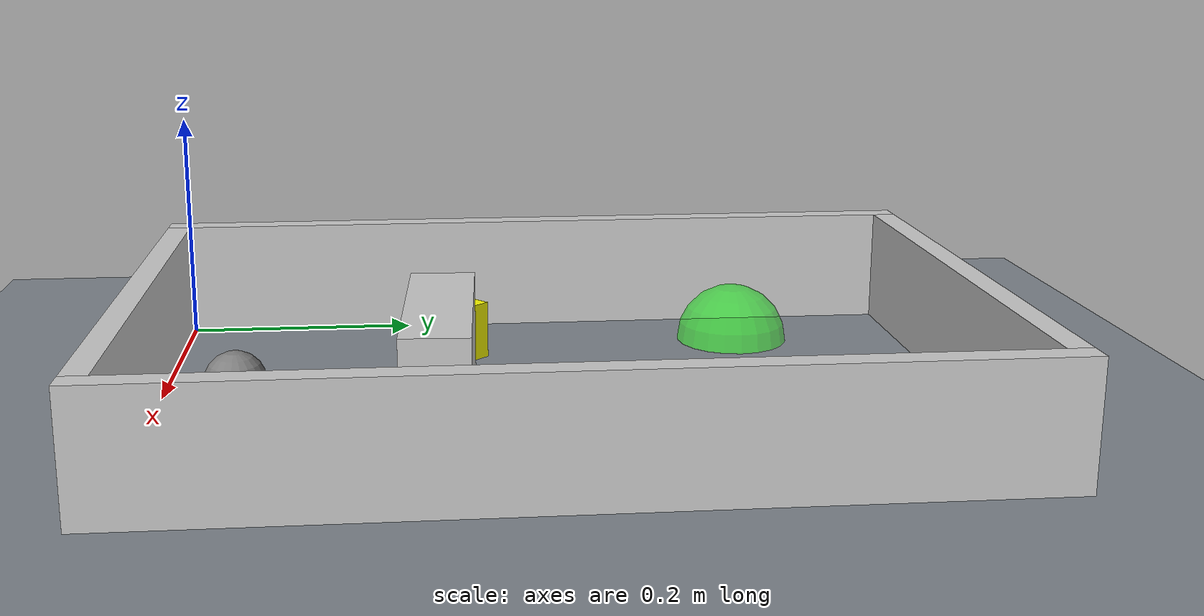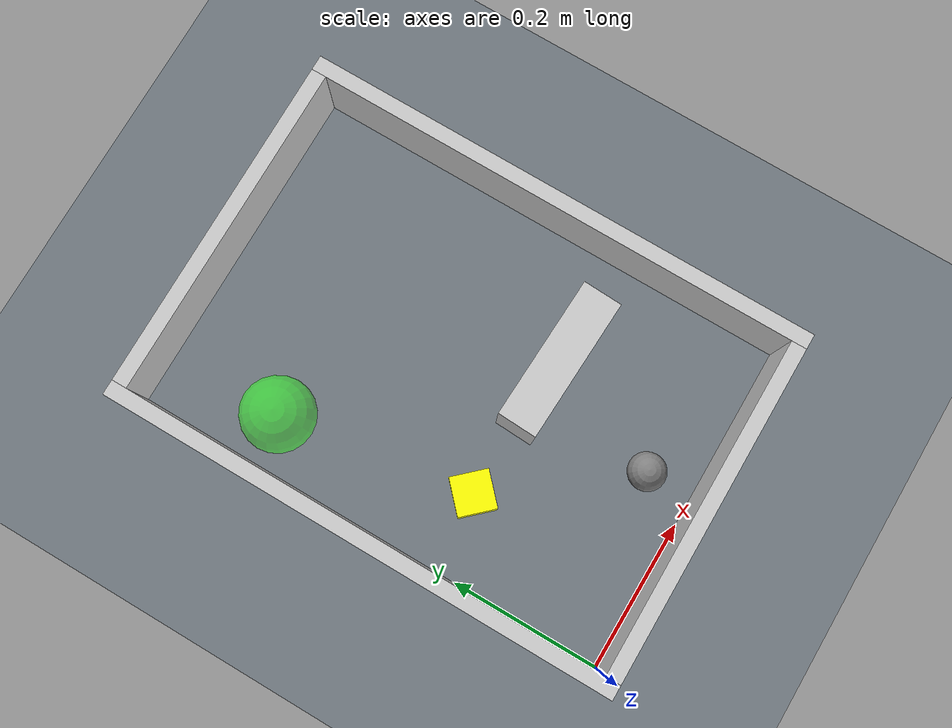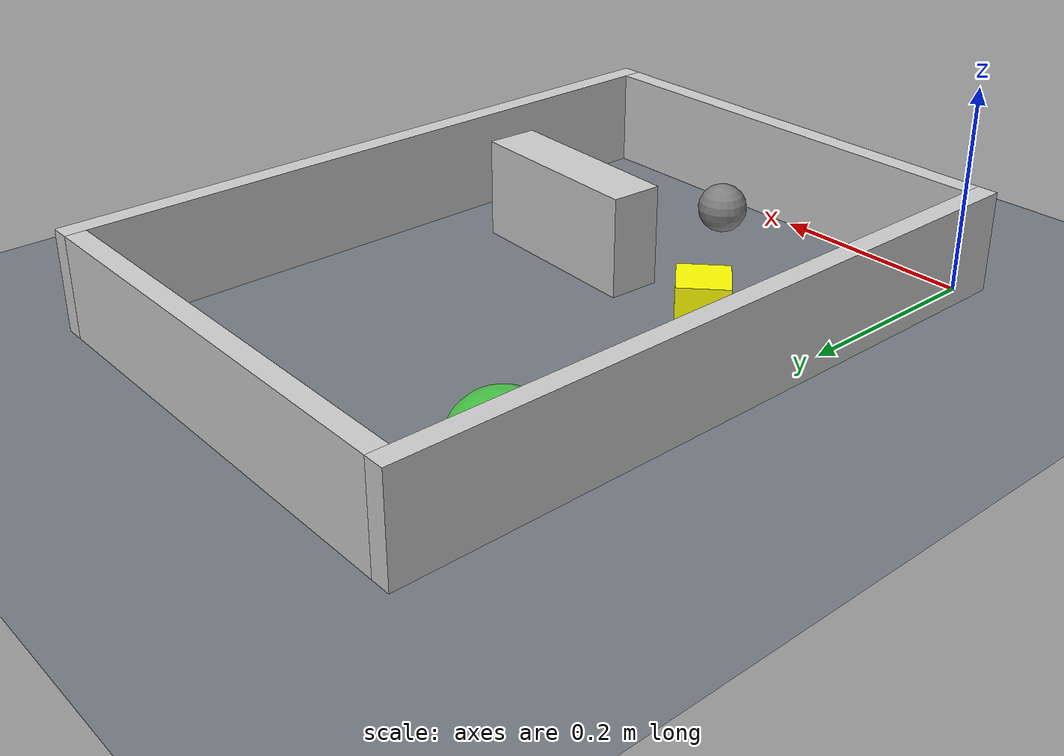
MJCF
<?xml version="1.0" ?>
<mujoco model="generated_environment">
  <option timestep="0.01" integrator="RK4" cone="elliptic"/>
  <default>
    <geom density="1"/>
  </default>
  <asset>
    <texture builtin="gradient" height="3072" rgb1="0.3 0.5 0.7" rgb2="0 0 0" type="skybox" width="512"/>
    <texture builtin="checker" height="300" mark="edge" markrgb="0.8 0.8 0.8" name="groundplane" rgb1="0.2 0.3 0.4" rgb2="0.1 0.2 0.3" type="2d" width="300"/>
    <material name="groundplane" reflectance="0.2" texrepeat="5 5" texture="groundplane" texuniform="true"/>
    <material name="robot" rgba="1.0 1.0 0.0 1.0"/>
  </asset>
  <worldbody>
    <light dir="0 0 -1" directional="true" pos="0 0 1.5"/>
    <geom condim="4" friction="0.5 0.005 0.001" material="groundplane" name="floor" size="0 0 0.05" type="plane"/>
    <body name="walls">
      <geom name="wall_1" condim="4" pos="-0.01 0.325 0.05" rgba="0.800000011920929 0.800000011920929 0.800000011920929 1.0" size="0.01 0.34500000000000003 0.05" type="box"/>
      <geom name="wall_2" condim="4" pos="0.46 0.325 0.05" rgba="0.800000011920929 0.800000011920929 0.800000011920929 1.0" size="0.01 0.34500000000000003 0.05" type="box"/>
      <geom name="wall_3" condim="4" pos="0.225 -0.01 0.05" rgba="0.800000011920929 0.800000011920929 0.800000011920929 1.0" size="0.225 0.01 0.05" type="box"/>
      <geom name="wall_4" condim="4" pos="0.225 0.66 0.05" rgba="0.800000011920929 0.800000011920929 0.800000011920929 1.0" size="0.225 0.01 0.05" type="box"/>
    </body>
    <body name="robot">
      <joint name="joint_x" type="slide" pos="0 0 0" axis="1 0 0"/>
      <joint name="joint_y" type="slide" pos="0 0 0" axis="0 1 0"/>
      <geom name="robot" type="sphere" pos="0.2375546884631789 0.06491778409770108 0.025" size="0.025 0.025 0.025" mass="5.0" friction="1.0 0.005 0.0001" condim="4"/>
    </body>
    <body name="wall_5">
      <geom name="wall_5" condim="4" pos="0.29152849130834 0.22628248757325028 0.05" euler="0 0 87.24758933250007" rgba="0.800000011920929 0.800000011920929 0.800000011920929 1.0" size="0.026000000000000002 0.095 0.05" type="box"/>
    </body>
    <body name="obstacle_1_movable">
      <geom name="obstacle_1_movable" condim="4" pos="0.10497307589339336 0.23561439298184841 0.025" euler="0 0 313.1387101839716" friction="0.0 0.005 0.001" rgba="1 1 0 1" size="0.025 0.025 0.025" type="box" mass="0.1"/>
      <joint type="free"/>
    </body>
    <site name="goal" type="sphere" size="0.05 0.05 0.05" rgba="0 1 0 0.5" pos="0.06746559043292179 0.4986971968503089 0.0"/>
  </worldbody>
  <actuator>
    <motor name="actuator_x" joint="joint_x" gear="1" ctrlrange="-1 1"/>
    <motor name="actuator_y" joint="joint_y" gear="1" ctrlrange="-1 1"/>
  </actuator>
</mujoco>
